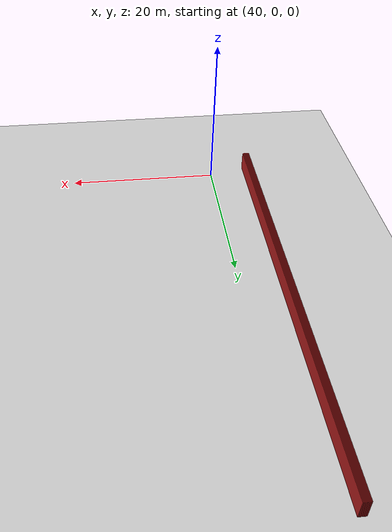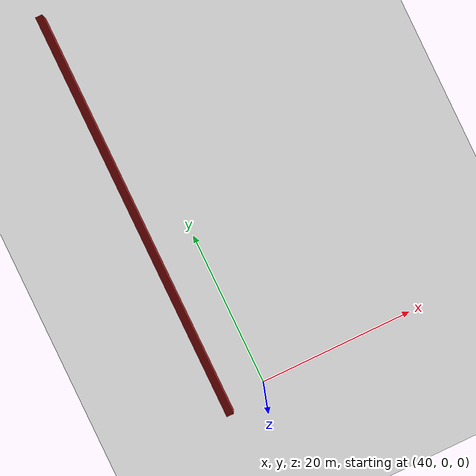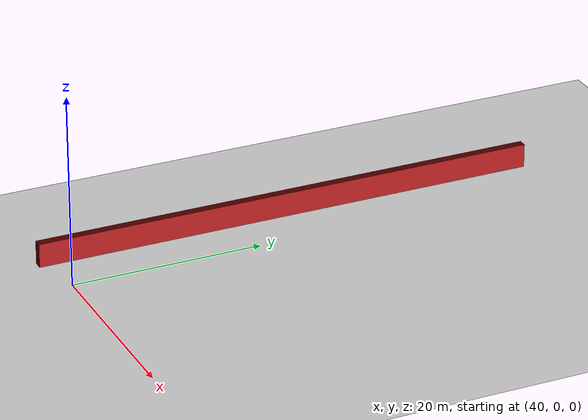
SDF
<sdf version="1.4">
 <world name="1_wall">
  <model name="ground_plane">
   <static>1</static>
   <link name="link">
    <collision name="collision">
     <geometry><plane><normal>0 0 1</normal><size>1000 1000</size></plane></geometry>
     <surface><friction><ode><mu>100</mu><mu2>50</mu2></ode></friction></surface>
    </collision>
    <visual name="visual">
     <cast_shadows>0</cast_shadows>
     <geometry><plane><normal>0 0 1</normal><size>10000 10000</size></plane></geometry>
     <material>
      <script><uri>file://media/materials/scripts/gazebo.material</uri><name>Gazebo/Grey</name></script>
     </material>
    </visual>
    <velocity_decay><linear>0</linear><angular>0</angular></velocity_decay>
   </link>
  </model>
  <model name="Wall_716">
   <static>1</static>
   <link name="Wall_716">
    <collision name="Wall_Collision_716">
     <geometry><box><size>53.65 0.05 2.5</size></box></geometry>
     <pose>0 0 1.25 0 -0 0</pose>
    </collision>
    <visual name="Wall_Visual_716">
     <pose>0 0 1.25 0 -0 0</pose>
     <geometry><box><size>53.65 0.05 2.5</size></box></geometry>
     <material>
      <script><uri>file://media/materials/scripts/gazebo.material</uri><name>Gazebo/Red</name></script>
     </material>
    </visual>
    <velocity_decay><linear>0</linear><angular>0</angular></velocity_decay>
    <pose>34.3 25.3 0 0 0 1.5707963267948966</pose>
   </link>
  </model>
  <model name="Wall_717">
   <static>1</static>
   <link name="Wall_717">
    <collision name="Wall_Collision_717">
     <geometry><box><size>53.65 0.05 2.5</size></box></geometry>
     <pose>0 0 1.25 0 -0 0</pose>
    </collision>
    <visual name="Wall_Visual_717">
     <pose>0 0 1.25 0 -0 0</pose>
     <geometry><box><size>53.65 0.05 2.5</size></box></geometry>
     <material>
      <script><uri>file://media/materials/scripts/gazebo.material</uri><name>Gazebo/Red</name></script>
     </material>
    </visual>
    <velocity_decay><linear>0</linear><angular>0</angular></velocity_decay>
    <pose>34.35 25.3 0 0 0 1.5707963267948966</pose>
   </link>
  </model>
  <model name="Wall_718">
   <static>1</static>
   <link name="Wall_718">
    <collision name="Wall_Collision_718">
     <geometry><box><size>53.65 0.05 2.5</size></box></geometry>
     <pose>0 0 1.25 0 -0 0</pose>
    </collision>
    <visual name="Wall_Visual_718">
     <pose>0 0 1.25 0 -0 0</pose>
     <geometry><box><size>53.65 0.05 2.5</size></box></geometry>
     <material>
      <script><uri>file://media/materials/scripts/gazebo.material</uri><name>Gazebo/Red</name></script>
     </material>
    </visual>
    <velocity_decay><linear>0</linear><angular>0</angular></velocity_decay>
    <pose>34.4 25.3 0 0 0 1.5707963267948966</pose>
   </link>
  </model>
  <model name="Wall_719">
   <static>1</static>
   <link name="Wall_719">
    <collision name="Wall_Collision_719">
     <geometry><box><size>53.65 0.05 2.5</size></box></geometry>
     <pose>0 0 1.25 0 -0 0</pose>
    </collision>
    <visual name="Wall_Visual_719">
     <pose>0 0 1.25 0 -0 0</pose>
     <geometry><box><size>53.65 0.05 2.5</size></box></geometry>
     <material>
      <script><uri>file://media/materials/scripts/gazebo.material</uri><name>Gazebo/Red</name></script>
     </material>
    </visual>
    <velocity_decay><linear>0</linear><angular>0</angular></velocity_decay>
    <pose>34.45 25.3 0 0 0 1.5707963267948966</pose>
   </link>
  </model>
  <model name="Wall_720">
   <static>1</static>
   <link name="Wall_720">
    <collision name="Wall_Collision_720">
     <geometry><box><size>53.65 0.05 2.5</size></box></geometry>
     <pose>0 0 1.25 0 -0 0</pose>
    </collision>
    <visual name="Wall_Visual_720">
     <pose>0 0 1.25 0 -0 0</pose>
     <geometry><box><size>53.65 0.05 2.5</size></box></geometry>
     <material>
      <script><uri>file://media/materials/scripts/gazebo.material</uri><name>Gazebo/Red</name></script>
     </material>
    </visual>
    <velocity_decay><linear>0</linear><angular>0</angular></velocity_decay>
    <pose>34.5 25.3 0 0 0 1.5707963267948966</pose>
   </link>
  </model>
  <model name="Wall_721">
   <static>1</static>
   <link name="Wall_721">
    <collision name="Wall_Collision_721">
     <geometry><box><size>53.65 0.05 2.5</size></box></geometry>
     <pose>0 0 1.25 0 -0 0</pose>
    </collision>
    <visual name="Wall_Visual_721">
     <pose>0 0 1.25 0 -0 0</pose>
     <geometry><box><size>53.65 0.05 2.5</size></box></geometry>
     <material>
      <script><uri>file://media/materials/scripts/gazebo.material</uri><name>Gazebo/Red</name></script>
     </material>
    </visual>
    <velocity_decay><linear>0</linear><angular>0</angular></velocity_decay>
    <pose>34.55 25.3 0 0 0 1.5707963267948966</pose>
   </link>
  </model>
  <model name="Wall_722">
   <static>1</static>
   <link name="Wall_722">
    <collision name="Wall_Collision_722">
     <geometry><box><size>53.65 0.05 2.5</size></box></geometry>
     <pose>0 0 1.25 0 -0 0</pose>
    </collision>
    <visual name="Wall_Visual_722">
     <pose>0 0 1.25 0 -0 0</pose>
     <geometry><box><size>53.65 0.05 2.5</size></box></geometry>
     <material>
      <script><uri>file://media/materials/scripts/gazebo.material</uri><name>Gazebo/Red</name></script>
     </material>
    </visual>
    <velocity_decay><linear>0</linear><angular>0</angular></velocity_decay>
    <pose>34.6 25.3 0 0 0 1.5707963267948966</pose>
   </link>
  </model>
  <model name="Wall_723">
   <static>1</static>
   <link name="Wall_723">
    <collision name="Wall_Collision_723">
     <geometry><box><size>53.65 0.05 2.5</size></box></geometry>
     <pose>0 0 1.25 0 -0 0</pose>
    </collision>
    <visual name="Wall_Visual_723">
     <pose>0 0 1.25 0 -0 0</pose>
     <geometry><box><size>53.65 0.05 2.5</size></box></geometry>
     <material>
      <script><uri>file://media/materials/scripts/gazebo.material</uri><name>Gazebo/Red</name></script>
     </material>
    </visual>
    <velocity_decay><linear>0</linear><angular>0</angular></velocity_decay>
    <pose>34.65 25.3 0 0 0 1.5707963267948966</pose>
   </link>
  </model>
  <model name="Wall_724">
   <static>1</static>
   <link name="Wall_724">
    <collision name="Wall_Collision_724">
     <geometry><box><size>53.65 0.05 2.5</size></box></geometry>
     <pose>0 0 1.25 0 -0 0</pose>
    </collision>
    <visual name="Wall_Visual_724">
     <pose>0 0 1.25 0 -0 0</pose>
     <geometry><box><size>53.65 0.05 2.5</size></box></geometry>
     <material>
      <script><uri>file://media/materials/scripts/gazebo.material</uri><name>Gazebo/Red</name></script>
     </material>
    </visual>
    <velocity_decay><linear>0</linear><angular>0</angular></velocity_decay>
    <pose>34.7 25.3 0 0 0 1.5707963267948966</pose>
   </link>
  </model>
  <model name="Wall_725">
   <static>1</static>
   <link name="Wall_725">
    <collision name="Wall_Collision_725">
     <geometry><box><size>53.65 0.05 2.5</size></box></geometry>
     <pose>0 0 1.25 0 -0 0</pose>
    </collision>
    <visual name="Wall_Visual_725">
     <pose>0 0 1.25 0 -0 0</pose>
     <geometry><box><size>53.65 0.05 2.5</size></box></geometry>
     <material>
      <script><uri>file://media/materials/scripts/gazebo.material</uri><name>Gazebo/Red</name></script>
     </material>
    </visual>
    <velocity_decay><linear>0</linear><angular>0</angular></velocity_decay>
    <pose>34.75 25.3 0 0 0 1.5707963267948966</pose>
   </link>
  </model>
  <model name="Wall_726">
   <static>1</static>
   <link name="Wall_726">
    <collision name="Wall_Collision_726">
     <geometry><box><size>53.65 0.05 2.5</size></box></geometry>
     <pose>0 0 1.25 0 -0 0</pose>
    </collision>
    <visual name="Wall_Visual_726">
     <pose>0 0 1.25 0 -0 0</pose>
     <geometry><box><size>53.65 0.05 2.5</size></box></geometry>
     <material>
      <script><uri>file://media/materials/scripts/gazebo.material</uri><name>Gazebo/Red</name></script>
     </material>
    </visual>
    <velocity_decay><linear>0</linear><angular>0</angular></velocity_decay>
    <pose>34.8 25.3 0 0 0 1.5707963267948966</pose>
   </link>
  </model>
  <model name="Wall_727">
   <static>1</static>
   <link name="Wall_727">
    <collision name="Wall_Collision_727">
     <geometry><box><size>53.65 0.05 2.5</size></box></geometry>
     <pose>0 0 1.25 0 -0 0</pose>
    </collision>
    <visual name="Wall_Visual_727">
     <pose>0 0 1.25 0 -0 0</pose>
     <geometry><box><size>53.65 0.05 2.5</size></box></geometry>
     <material>
      <script><uri>file://media/materials/scripts/gazebo.material</uri><name>Gazebo/Red</name></script>
     </material>
    </visual>
    <velocity_decay><linear>0</linear><angular>0</angular></velocity_decay>
    <pose>34.85 25.3 0 0 0 1.5707963267948966</pose>
   </link>
  </model>
  <model name="Wall_728">
   <static>1</static>
   <link name="Wall_728">
    <collision name="Wall_Collision_728">
     <geometry><box><size>53.65 0.05 2.5</size></box></geometry>
     <pose>0 0 1.25 0 -0 0</pose>
    </collision>
    <visual name="Wall_Visual_728">
     <pose>0 0 1.25 0 -0 0</pose>
     <geometry><box><size>53.65 0.05 2.5</size></box></geometry>
     <material>
      <script><uri>file://media/materials/scripts/gazebo.material</uri><name>Gazebo/Red</name></script>
     </material>
    </visual>
    <velocity_decay><linear>0</linear><angular>0</angular></velocity_decay>
    <pose>34.9 25.3 0 0 0 1.5707963267948966</pose>
   </link>
  </model>
  <model name="Wall_729">
   <static>1</static>
   <link name="Wall_729">
    <collision name="Wall_Collision_729">
     <geometry><box><size>53.65 0.05 2.5</size></box></geometry>
     <pose>0 0 1.25 0 -0 0</pose>
    </collision>
    <visual name="Wall_Visual_729">
     <pose>0 0 1.25 0 -0 0</pose>
     <geometry><box><size>53.65 0.05 2.5</size></box></geometry>
     <material>
      <script><uri>file://media/materials/scripts/gazebo.material</uri><name>Gazebo/Red</name></script>
     </material>
    </visual>
    <velocity_decay><linear>0</linear><angular>0</angular></velocity_decay>
    <pose>34.95 25.3 0 0 0 1.5707963267948966</pose>
   </link>
  </model>
  <model name="Wall_730">
   <static>1</static>
   <link name="Wall_730">
    <collision name="Wall_Collision_730">
     <geometry><box><size>53.65 0.05 2.5</size></box></geometry>
     <pose>0 0 1.25 0 -0 0</pose>
    </collision>
    <visual name="Wall_Visual_730">
     <pose>0 0 1.25 0 -0 0</pose>
     <geometry><box><size>53.65 0.05 2.5</size></box></geometry>
     <material>
      <script><uri>file://media/materials/scripts/gazebo.material</uri><name>Gazebo/Red</name></script>
     </material>
    </visual>
    <velocity_decay><linear>0</linear><angular>0</angular></velocity_decay>
    <pose>35.0 25.3 0 0 0 1.5707963267948966</pose>
   </link>
  </model>
  <model name="Wall_731">
   <static>1</static>
   <link name="Wall_731">
    <collision name="Wall_Collision_731">
     <geometry><box><size>53.65 0.05 2.5</size></box></geometry>
     <pose>0 0 1.25 0 -0 0</pose>
    </collision>
    <visual name="Wall_Visual_731">
     <pose>0 0 1.25 0 -0 0</pose>
     <geometry><box><size>53.65 0.05 2.5</size></box></geometry>
     <material>
      <script><uri>file://media/materials/scripts/gazebo.material</uri><name>Gazebo/Red</name></script>
     </material>
    </visual>
    <velocity_decay><linear>0</linear><angular>0</angular></velocity_decay>
    <pose>35.05 25.3 0 0 0 1.5707963267948966</pose>
   </link>
  </model>
  <model name="Wall_732">
   <static>1</static>
   <link name="Wall_732">
    <collision name="Wall_Collision_732">
     <geometry><box><size>53.65 0.05 2.5</size></box></geometry>
     <pose>0 0 1.25 0 -0 0</pose>
    </collision>
    <visual name="Wall_Visual_732">
     <pose>0 0 1.25 0 -0 0</pose>
     <geometry><box><size>53.65 0.05 2.5</size></box></geometry>
     <material>
      <script><uri>file://media/materials/scripts/gazebo.material</uri><name>Gazebo/Red</name></script>
     </material>
    </visual>
    <velocity_decay><linear>0</linear><angular>0</angular></velocity_decay>
    <pose>35.1 25.3 0 0 0 1.5707963267948966</pose>
   </link>
  </model>
  <model name="Wall_733">
   <static>1</static>
   <link name="Wall_733">
    <collision name="Wall_Collision_733">
     <geometry><box><size>53.65 0.05 2.5</size></box></geometry>
     <pose>0 0 1.25 0 -0 0</pose>
    </collision>
    <visual name="Wall_Visual_733">
     <pose>0 0 1.25 0 -0 0</pose>
     <geometry><box><size>53.65 0.05 2.5</size></box></geometry>
     <material>
      <script><uri>file://media/materials/scripts/gazebo.material</uri><name>Gazebo/Red</name></script>
     </material>
    </visual>
    <velocity_decay><linear>0</linear><angular>0</angular></velocity_decay>
    <pose>35.15 25.3 0 0 0 1.5707963267948966</pose>
   </link>
  </model>
 </world>
</sdf>
